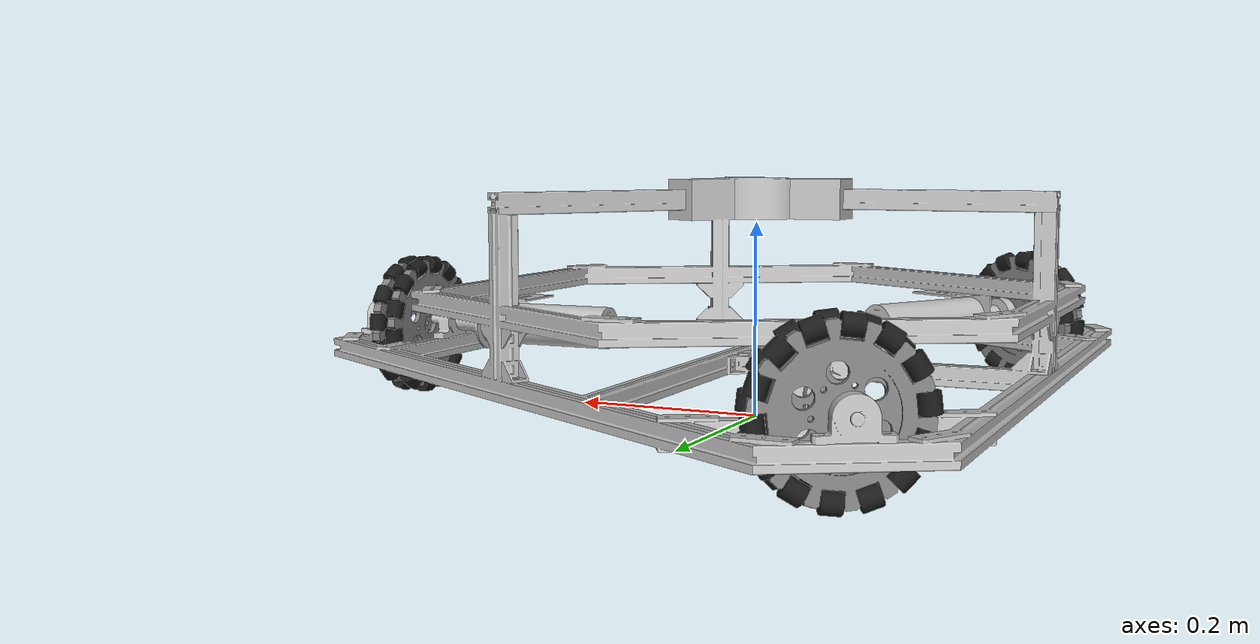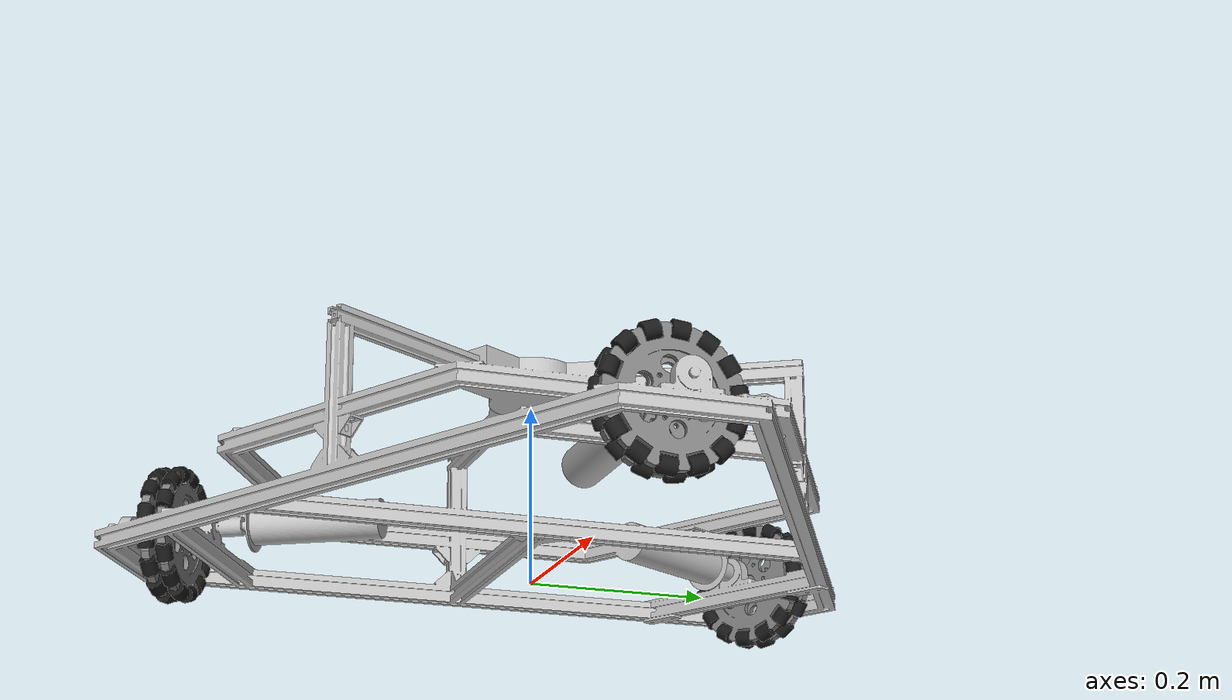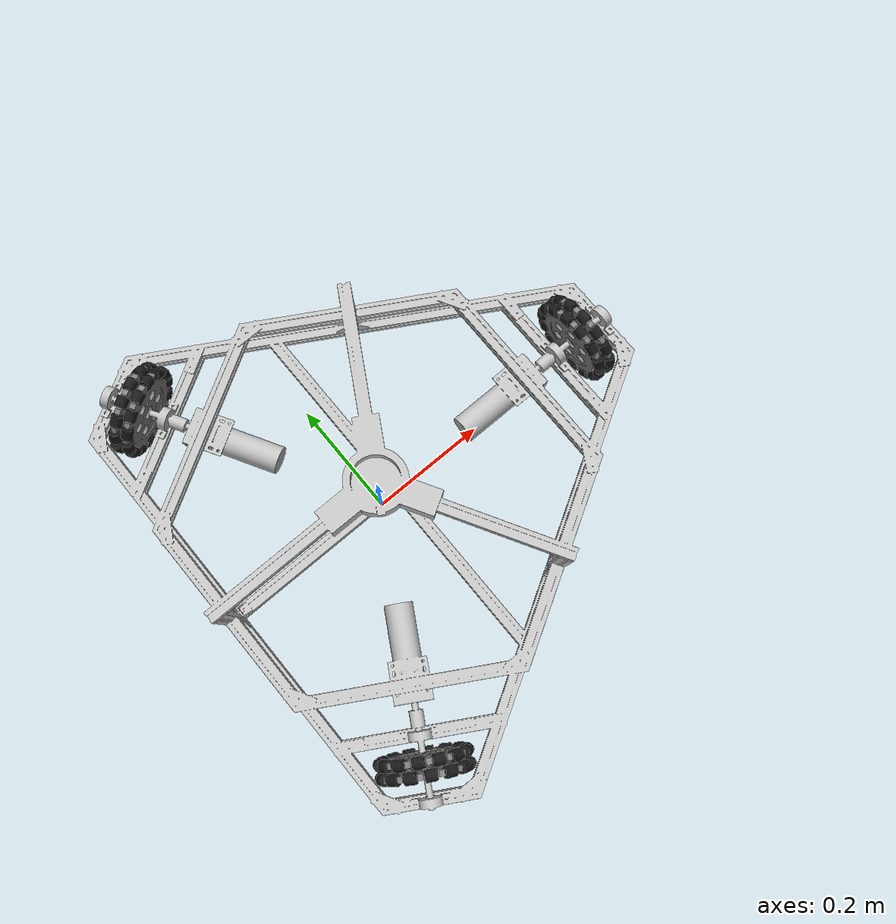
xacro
<?xml version="1.0"?>
<robot xmlns:xacro="http://www.ros.org/wiki/xacro" name="Omni-Bot">
  <!--           Includes            -->
  <xacro:include filename="wheels.xacro" />

  <!--      Parameters (in SI)       -->
  <xacro:property name="base_side_length" value="1.05" />
  <xacro:property name="base_width" value="0.048" />
  <xacro:property name="base_mass" value="3.214" />

  <!--        Derived Params         -->
  <xacro:property name="bot_radius" value="${base_side_length / sqrt(3) - 0.215}" />
  <xacro:property name="wheel_offset" value="0.02" />

  <link name="base_footprint" />

  <joint name="base_joint" type="fixed">
    <parent link="base_footprint" />
    <child link="base_link" />
    <origin xyz="0 0 ${wheel_radius}" />
  </joint>

  <link name="base_link">
    <visual>
      <origin xyz="-${base_side_length*sqrt(3)/6} 0.0 -${base_width/1.5}" rpy="0.0 0.0 ${-pi/3}" />
      <geometry>
        <mesh filename="package://omni_bot_description/description/stl/chassis.stl" />
      </geometry>
      <material name="light_gray">
        <color rgba="0.75 0.75 0.75 1.0" />
      </material>
    </visual>
  </link>

  <xacro:wheel i="0" parent="base_link" />
  <xacro:wheel i="1" parent="base_link" />
  <xacro:wheel i="2" parent="base_link" />
</robot>

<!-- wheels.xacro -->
<robot xmlns:xacro="http://www.ros.org/wiki/xacro">
  <!--      Parameters (in SI)       -->
  <xacro:property name="plate_mass" value="0.21" />
  <xacro:property name="plate_radius" value="0.0675" />
  <xacro:property name="plate_gap" value="0.02" />
  <xacro:property name="roller_radius" value="0.0095" />
  <xacro:property name="wheel_radius" value="${plate_radius + roller_radius}" />

  <xacro:macro name="wheel" params="i parent">
    <!--     Get wheel position      -->
    <xacro:property name="angle" value="${i * 2 * pi/3}" />
    <xacro:property name="x" value="${(bot_radius + wheel_offset) * cos(angle)}" />
    <xacro:property name="y" value="${(bot_radius + wheel_offset) * sin(angle)}" />

    <joint name="wheel_joint_${i}" type="continuous">
      <parent link="${parent}" />
      <child link="wheel_${i}" />
      <origin xyz="${x} ${y} 0" rpy="0 ${pi/2} ${angle}" />
      <axis xyz="0 0 1" />
    </joint>

    <link name="wheel_${i}">
      <!-- A simple collision geometry -->
    </link>

    <xacro:plate i="-1" parent="wheel_${i}" />
    <xacro:plate i="1" parent="wheel_${i}" />
  </xacro:macro>

  <xacro:macro name="plate" params="i parent">
    <!--     Get plate position      -->
    <joint name="${parent}_plate_joint_${i}" type="fixed">
      <parent link="${parent}" />
      <child link="${parent}_plate_${i}" />
      <origin xyz="0 0 ${i * plate_gap/2}" rpy="0 0 ${i * pi/28}" />
    </joint>

    <link name="${parent}_plate_${i}">
      <visual>
        <origin xyz="0 0 0" rpy="${pi/2} 0 0" />
        <geometry>
          <mesh filename="package://omni_bot_description/description/stl/omni_wheel_plate.stl" />
        </geometry>
        <material name="gray">
          <color rgba="0.5 0.5 0.5 1.0" />
        </material>
      </visual>
    </link>

    <!--   Add rollers to plate    -->
    <xacro:roller i="0" parent="${parent}_plate_${i}" />
    <xacro:roller i="1" parent="${parent}_plate_${i}" />
    <xacro:roller i="2" parent="${parent}_plate_${i}" />
    <xacro:roller i="3" parent="${parent}_plate_${i}" />
    <xacro:roller i="4" parent="${parent}_plate_${i}" />
    <xacro:roller i="5" parent="${parent}_plate_${i}" />
    <xacro:roller i="6" parent="${parent}_plate_${i}" />
    <xacro:roller i="7" parent="${parent}_plate_${i}" />
    <xacro:roller i="8" parent="${parent}_plate_${i}" />
    <xacro:roller i="9" parent="${parent}_plate_${i}" />
    <xacro:roller i="10" parent="${parent}_plate_${i}" />
    <xacro:roller i="11" parent="${parent}_plate_${i}" />
    <xacro:roller i="12" parent="${parent}_plate_${i}" />
    <xacro:roller i="13" parent="${parent}_plate_${i}" />
  </xacro:macro>

  <xacro:macro name="roller" params="i parent">
    <!--     Get roller position      -->
    <xacro:property name="angle" value="${i * pi/7 + pi/14}" />
    <xacro:property name="x" value="${plate_radius * cos(angle)}" />
    <xacro:property name="y" value="${plate_radius * sin(angle)}" />

    <joint name="${parent}_roller_joint_${i}" type="continuous">
      <parent link="${parent}" />
      <child link="${parent}_roller_${i}" />
      <origin xyz="${x} ${y} 0" rpy="${pi/2} 0 ${angle}" />
      <axis xyz="0 0 1" />
    </joint>

    <link name="${parent}_roller_${i}">
      <visual>
        <origin xyz="0 0 0" rpy="0 ${pi/2} 0" />
        <geometry>
          <mesh filename="package://omni_bot_description/description/stl/omni_wheel_roller.stl" />
        </geometry>
        <material name="black">
          <color rgba="0.1 0.1 0.1 1.0" />
        </material>
      </visual>
    </link>
  </xacro:macro>

  <!--             test              -->
</robot>
